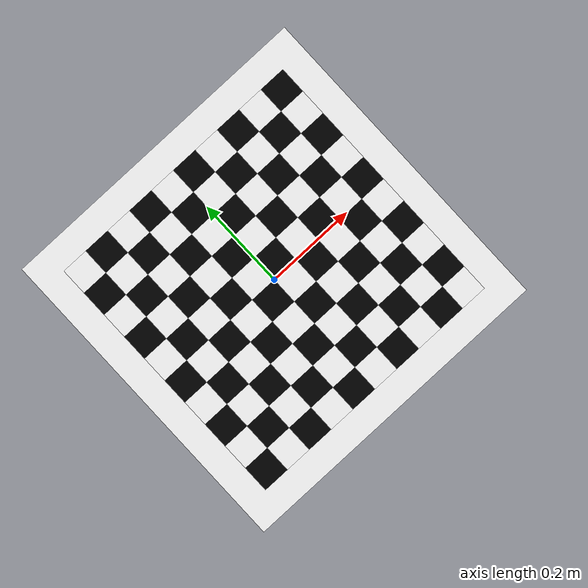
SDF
<?xml version="1.0"?>
<sdf version="1.4">
  <model name="checkerboard_10_10_0_06">
  <static>true</static>
  <link name="checkerboard_10_10_0_06_body">
      <visual name="checker_0_0">
        <pose>-0.27 -0.27 0 0 0 0</pose>
        <geometry>
          <box>
            <size>0.06 0.06 0.0002</size>
          </box>
        </geometry>
        <material>
          <ambient>0 0 0 1</ambient>
          <diffuse>0 0 0 1</diffuse>
          <specular>0 0 0 1</specular>
          <emissive>0 0 0 1</emissive>
        </material>
      </visual>
      <visual name="checker_0_1">
        <pose>-0.27 -0.21 0 0 0 0</pose>
        <geometry>
          <box>
            <size>0.06 0.06 0.0002</size>
          </box>
        </geometry>
        <material>
          <ambient>1 1 1 1</ambient>
          <diffuse>1 1 1 1</diffuse>
          <specular>1 1 1 1</specular>
          <emissive>1 1 1 1</emissive>
        </material>
      </visual>
      <visual name="checker_0_2">
        <pose>-0.27 -0.15 0 0 0 0</pose>
        <geometry>
          <box>
            <size>0.06 0.06 0.0002</size>
          </box>
        </geometry>
        <material>
          <ambient>0 0 0 1</ambient>
          <diffuse>0 0 0 1</diffuse>
          <specular>0 0 0 1</specular>
          <emissive>0 0 0 1</emissive>
        </material>
      </visual>
      <visual name="checker_0_3">
        <pose>-0.27 -0.09 0 0 0 0</pose>
        <geometry>
          <box>
            <size>0.06 0.06 0.0002</size>
          </box>
        </geometry>
        <material>
          <ambient>1 1 1 1</ambient>
          <diffuse>1 1 1 1</diffuse>
          <specular>1 1 1 1</specular>
          <emissive>1 1 1 1</emissive>
        </material>
      </visual>
      <visual name="checker_0_4">
        <pose>-0.27 -0.02999999999999997 0 0 0 0</pose>
        <geometry>
          <box>
            <size>0.06 0.06 0.0002</size>
          </box>
        </geometry>
        <material>
          <ambient>0 0 0 1</ambient>
          <diffuse>0 0 0 1</diffuse>
          <specular>0 0 0 1</specular>
          <emissive>0 0 0 1</emissive>
        </material>
      </visual>
      <visual name="checker_0_5">
        <pose>-0.27 0.02999999999999997 0 0 0 0</pose>
        <geometry>
          <box>
            <size>0.06 0.06 0.0002</size>
          </box>
        </geometry>
        <material>
          <ambient>1 1 1 1</ambient>
          <diffuse>1 1 1 1</diffuse>
          <specular>1 1 1 1</specular>
          <emissive>1 1 1 1</emissive>
        </material>
      </visual>
      <visual name="checker_0_6">
        <pose>-0.27 0.09000000000000002 0 0 0 0</pose>
        <geometry>
          <box>
            <size>0.06 0.06 0.0002</size>
          </box>
        </geometry>
        <material>
          <ambient>0 0 0 1</ambient>
          <diffuse>0 0 0 1</diffuse>
          <specular>0 0 0 1</specular>
          <emissive>0 0 0 1</emissive>
        </material>
      </visual>
      <visual name="checker_0_7">
        <pose>-0.27 0.14999999999999997 0 0 0 0</pose>
        <geometry>
          <box>
            <size>0.06 0.06 0.0002</size>
          </box>
        </geometry>
        <material>
          <ambient>1 1 1 1</ambient>
          <diffuse>1 1 1 1</diffuse>
          <specular>1 1 1 1</specular>
          <emissive>1 1 1 1</emissive>
        </material>
      </visual>
      <visual name="checker_0_8">
        <pose>-0.27 0.21000000000000002 0 0 0 0</pose>
        <geometry>
          <box>
            <size>0.06 0.06 0.0002</size>
          </box>
        </geometry>
        <material>
          <ambient>0 0 0 1</ambient>
          <diffuse>0 0 0 1</diffuse>
          <specular>0 0 0 1</specular>
          <emissive>0 0 0 1</emissive>
        </material>
      </visual>
      <visual name="checker_0_9">
        <pose>-0.27 0.2700000000000001 0 0 0 0</pose>
        <geometry>
          <box>
            <size>0.06 0.06 0.0002</size>
          </box>
        </geometry>
        <material>
          <ambient>1 1 1 1</ambient>
          <diffuse>1 1 1 1</diffuse>
          <specular>1 1 1 1</specular>
          <emissive>1 1 1 1</emissive>
        </material>
      </visual>
      <visual name="checker_1_0">
        <pose>-0.21 -0.27 0 0 0 0</pose>
        <geometry>
          <box>
            <size>0.06 0.06 0.0002</size>
          </box>
        </geometry>
        <material>
          <ambient>1 1 1 1</ambient>
          <diffuse>1 1 1 1</diffuse>
          <specular>1 1 1 1</specular>
          <emissive>1 1 1 1</emissive>
        </material>
      </visual>
      <visual name="checker_1_1">
        <pose>-0.21 -0.21 0 0 0 0</pose>
        <geometry>
          <box>
            <size>0.06 0.06 0.0002</size>
          </box>
        </geometry>
        <material>
          <ambient>0 0 0 1</ambient>
          <diffuse>0 0 0 1</diffuse>
          <specular>0 0 0 1</specular>
          <emissive>0 0 0 1</emissive>
        </material>
      </visual>
      <visual name="checker_1_2">
        <pose>-0.21 -0.15 0 0 0 0</pose>
        <geometry>
          <box>
            <size>0.06 0.06 0.0002</size>
          </box>
        </geometry>
        <material>
          <ambient>1 1 1 1</ambient>
          <diffuse>1 1 1 1</diffuse>
          <specular>1 1 1 1</specular>
          <emissive>1 1 1 1</emissive>
        </material>
      </visual>
      <visual name="checker_1_3">
        <pose>-0.21 -0.09 0 0 0 0</pose>
        <geometry>
          <box>
            <size>0.06 0.06 0.0002</size>
          </box>
        </geometry>
        <material>
          <ambient>0 0 0 1</ambient>
          <diffuse>0 0 0 1</diffuse>
          <specular>0 0 0 1</specular>
          <emissive>0 0 0 1</emissive>
        </material>
      </visual>
      <visual name="checker_1_4">
        <pose>-0.21 -0.02999999999999997 0 0 0 0</pose>
        <geometry>
          <box>
            <size>0.06 0.06 0.0002</size>
          </box>
        </geometry>
        <material>
          <ambient>1 1 1 1</ambient>
          <diffuse>1 1 1 1</diffuse>
          <specular>1 1 1 1</specular>
          <emissive>1 1 1 1</emissive>
        </material>
      </visual>
      <visual name="checker_1_5">
        <pose>-0.21 0.02999999999999997 0 0 0 0</pose>
        <geometry>
          <box>
            <size>0.06 0.06 0.0002</size>
          </box>
        </geometry>
        <material>
          <ambient>0 0 0 1</ambient>
          <diffuse>0 0 0 1</diffuse>
          <specular>0 0 0 1</specular>
          <emissive>0 0 0 1</emissive>
        </material>
      </visual>
      <visual name="checker_1_6">
        <pose>-0.21 0.09000000000000002 0 0 0 0</pose>
        <geometry>
          <box>
            <size>0.06 0.06 0.0002</size>
          </box>
        </geometry>
        <material>
          <ambient>1 1 1 1</ambient>
          <diffuse>1 1 1 1</diffuse>
          <specular>1 1 1 1</specular>
          <emissive>1 1 1 1</emissive>
        </material>
      </visual>
      <visual name="checker_1_7">
        <pose>-0.21 0.14999999999999997 0 0 0 0</pose>
        <geometry>
          <box>
            <size>0.06 0.06 0.0002</size>
          </box>
        </geometry>
        <material>
          <ambient>0 0 0 1</ambient>
          <diffuse>0 0 0 1</diffuse>
          <specular>0 0 0 1</specular>
          <emissive>0 0 0 1</emissive>
        </material>
      </visual>
      <visual name="checker_1_8">
        <pose>-0.21 0.21000000000000002 0 0 0 0</pose>
        <geometry>
          <box>
            <size>0.06 0.06 0.0002</size>
          </box>
        </geometry>
        <material>
          <ambient>1 1 1 1</ambient>
          <diffuse>1 1 1 1</diffuse>
          <specular>1 1 1 1</specular>
          <emissive>1 1 1 1</emissive>
        </material>
      </visual>
      <visual name="checker_1_9">
        <pose>-0.21 0.2700000000000001 0 0 0 0</pose>
        <geometry>
          <box>
            <size>0.06 0.06 0.0002</size>
          </box>
        </geometry>
        <material>
          <ambient>0 0 0 1</ambient>
          <diffuse>0 0 0 1</diffuse>
          <specular>0 0 0 1</specular>
          <emissive>0 0 0 1</emissive>
        </material>
      </visual>
      <visual name="checker_2_0">
        <pose>-0.15 -0.27 0 0 0 0</pose>
        <geometry>
          <box>
            <size>0.06 0.06 0.0002</size>
          </box>
        </geometry>
        <material>
          <ambient>0 0 0 1</ambient>
          <diffuse>0 0 0 1</diffuse>
          <specular>0 0 0 1</specular>
          <emissive>0 0 0 1</emissive>
        </material>
      </visual>
      <visual name="checker_2_1">
        <pose>-0.15 -0.21 0 0 0 0</pose>
        <geometry>
          <box>
            <size>0.06 0.06 0.0002</size>
          </box>
        </geometry>
        <material>
          <ambient>1 1 1 1</ambient>
          <diffuse>1 1 1 1</diffuse>
          <specular>1 1 1 1</specular>
          <emissive>1 1 1 1</emissive>
        </material>
      </visual>
      <visual name="checker_2_2">
        <pose>-0.15 -0.15 0 0 0 0</pose>
        <geometry>
          <box>
            <size>0.06 0.06 0.0002</size>
          </box>
        </geometry>
        <material>
          <ambient>0 0 0 1</ambient>
          <diffuse>0 0 0 1</diffuse>
          <specular>0 0 0 1</specular>
          <emissive>0 0 0 1</emissive>
        </material>
      </visual>
      <visual name="checker_2_3">
        <pose>-0.15 -0.09 0 0 0 0</pose>
        <geometry>
          <box>
            <size>0.06 0.06 0.0002</size>
          </box>
        </geometry>
        <material>
          <ambient>1 1 1 1</ambient>
          <diffuse>1 1 1 1</diffuse>
          <specular>1 1 1 1</specular>
          <emissive>1 1 1 1</emissive>
        </material>
      </visual>
      <visual name="checker_2_4">
        <pose>-0.15 -0.02999999999999997 0 0 0 0</pose>
        <geometry>
          <box>
            <size>0.06 0.06 0.0002</size>
          </box>
        </geometry>
        <material>
          <ambient>0 0 0 1</ambient>
          <diffuse>0 0 0 1</diffuse>
          <specular>0 0 0 1</specular>
          <emissive>0 0 0 1</emissive>
        </material>
      </visual>
      <visual name="checker_2_5">
        <pose>-0.15 0.02999999999999997 0 0 0 0</pose>
        <geometry>
          <box>
            <size>0.06 0.06 0.0002</size>
          </box>
        </geometry>
        <material>
          <ambient>1 1 1 1</ambient>
          <diffuse>1 1 1 1</diffuse>
          <specular>1 1 1 1</specular>
          <emissive>1 1 1 1</emissive>
        </material>
      </visual>
      <visual name="checker_2_6">
        <pose>-0.15 0.09000000000000002 0 0 0 0</pose>
        <geometry>
          <box>
            <size>0.06 0.06 0.0002</size>
          </box>
        </geometry>
        <material>
          <ambient>0 0 0 1</ambient>
          <diffuse>0 0 0 1</diffuse>
          <specular>0 0 0 1</specular>
          <emissive>0 0 0 1</emissive>
        </material>
      </visual>
      <visual name="checker_2_7">
        <pose>-0.15 0.14999999999999997 0 0 0 0</pose>
        <geometry>
          <box>
            <size>0.06 0.06 0.0002</size>
          </box>
        </geometry>
        <material>
          <ambient>1 1 1 1</ambient>
          <diffuse>1 1 1 1</diffuse>
          <specular>1 1 1 1</specular>
          <emissive>1 1 1 1</emissive>
        </material>
      </visual>
      <visual name="checker_2_8">
        <pose>-0.15 0.21000000000000002 0 0 0 0</pose>
        <geometry>
          <box>
            <size>0.06 0.06 0.0002</size>
          </box>
        </geometry>
        <material>
          <ambient>0 0 0 1</ambient>
          <diffuse>0 0 0 1</diffuse>
          <specular>0 0 0 1</specular>
          <emissive>0 0 0 1</emissive>
        </material>
      </visual>
      <visual name="checker_2_9">
        <pose>-0.15 0.2700000000000001 0 0 0 0</pose>
        <geometry>
          <box>
            <size>0.06 0.06 0.0002</size>
          </box>
        </geometry>
        <material>
          <ambient>1 1 1 1</ambient>
          <diffuse>1 1 1 1</diffuse>
          <specular>1 1 1 1</specular>
          <emissive>1 1 1 1</emissive>
        </material>
      </visual>
      <visual name="checker_3_0">
        <pose>-0.09 -0.27 0 0 0 0</pose>
        <geometry>
          <box>
            <size>0.06 0.06 0.0002</size>
          </box>
        </geometry>
        <material>
          <ambient>1 1 1 1</ambient>
          <diffuse>1 1 1 1</diffuse>
          <specular>1 1 1 1</specular>
          <emissive>1 1 1 1</emissive>
        </material>
      </visual>
      <visual name="checker_3_1">
        <pose>-0.09 -0.21 0 0 0 0</pose>
        <geometry>
          <box>
            <size>0.06 0.06 0.0002</size>
          </box>
        </geometry>
        <material>
          <ambient>0 0 0 1</ambient>
          <diffuse>0 0 0 1</diffuse>
          <specular>0 0 0 1</specular>
          <emissive>0 0 0 1</emissive>
        </material>
      </visual>
      <visual name="checker_3_2">
        <pose>-0.09 -0.15 0 0 0 0</pose>
        <geometry>
          <box>
            <size>0.06 0.06 0.0002</size>
          </box>
        </geometry>
        <material>
          <ambient>1 1 1 1</ambient>
          <diffuse>1 1 1 1</diffuse>
          <specular>1 1 1 1</specular>
          <emissive>1 1 1 1</emissive>
        </material>
      </visual>
      <visual name="checker_3_3">
        <pose>-0.09 -0.09 0 0 0 0</pose>
        <geometry>
          <box>
            <size>0.06 0.06 0.0002</size>
          </box>
        </geometry>
        <material>
          <ambient>0 0 0 1</ambient>
          <diffuse>0 0 0 1</diffuse>
          <specular>0 0 0 1</specular>
          <emissive>0 0 0 1</emissive>
        </material>
      </visual>
      <visual name="checker_3_4">
        <pose>-0.09 -0.02999999999999997 0 0 0 0</pose>
        <geometry>
          <box>
            <size>0.06 0.06 0.0002</size>
          </box>
        </geometry>
        <material>
          <ambient>1 1 1 1</ambient>
          <diffuse>1 1 1 1</diffuse>
          <specular>1 1 1 1</specular>
          <emissive>1 1 1 1</emissive>
        </material>
      </visual>
      <visual name="checker_3_5">
        <pose>-0.09 0.02999999999999997 0 0 0 0</pose>
        <geometry>
          <box>
            <size>0.06 0.06 0.0002</size>
          </box>
        </geometry>
        <material>
          <ambient>0 0 0 1</ambient>
          <diffuse>0 0 0 1</diffuse>
          <specular>0 0 0 1</specular>
          <emissive>0 0 0 1</emissive>
        </material>
      </visual>
      <visual name="checker_3_6">
        <pose>-0.09 0.09000000000000002 0 0 0 0</pose>
        <geometry>
          <box>
            <size>0.06 0.06 0.0002</size>
          </box>
        </geometry>
        <material>
          <ambient>1 1 1 1</ambient>
          <diffuse>1 1 1 1</diffuse>
          <specular>1 1 1 1</specular>
          <emissive>1 1 1 1</emissive>
        </material>
      </visual>
      <visual name="checker_3_7">
        <pose>-0.09 0.14999999999999997 0 0 0 0</pose>
        <geometry>
          <box>
            <size>0.06 0.06 0.0002</size>
          </box>
        </geometry>
        <material>
          <ambient>0 0 0 1</ambient>
          <diffuse>0 0 0 1</diffuse>
          <specular>0 0 0 1</specular>
          <emissive>0 0 0 1</emissive>
        </material>
      </visual>
      <visual name="checker_3_8">
        <pose>-0.09 0.21000000000000002 0 0 0 0</pose>
        <geometry>
          <box>
            <size>0.06 0.06 0.0002</size>
          </box>
        </geometry>
        <material>
          <ambient>1 1 1 1</ambient>
          <diffuse>1 1 1 1</diffuse>
          <specular>1 1 1 1</specular>
          <emissive>1 1 1 1</emissive>
        </material>
      </visual>
      <visual name="checker_3_9">
        <pose>-0.09 0.2700000000000001 0 0 0 0</pose>
        <geometry>
          <box>
            <size>0.06 0.06 0.0002</size>
          </box>
        </geometry>
        <material>
          <ambient>0 0 0 1</ambient>
          <diffuse>0 0 0 1</diffuse>
          <specular>0 0 0 1</specular>
          <emissive>0 0 0 1</emissive>
        </material>
      </visual>
      <visual name="checker_4_0">
        <pose>-0.02999999999999997 -0.27 0 0 0 0</pose>
        <geometry>
          <box>
            <size>0.06 0.06 0.0002</size>
          </box>
        </geometry>
        <material>
          <ambient>0 0 0 1</ambient>
          <diffuse>0 0 0 1</diffuse>
          <specular>0 0 0 1</specular>
          <emissive>0 0 0 1</emissive>
        </material>
      </visual>
      <visual name="checker_4_1">
        <pose>-0.02999999999999997 -0.21 0 0 0 0</pose>
        <geometry>
          <box>
            <size>0.06 0.06 0.0002</size>
          </box>
        </geometry>
        <material>
          <ambient>1 1 1 1</ambient>
          <diffuse>1 1 1 1</diffuse>
          <specular>1 1 1 1</specular>
          <emissive>1 1 1 1</emissive>
        </material>
      </visual>
      <visual name="checker_4_2">
        <pose>-0.02999999999999997 -0.15 0 0 0 0</pose>
        <geometry>
          <box>
            <size>0.06 0.06 0.0002</size>
          </box>
        </geometry>
        <material>
          <ambient>0 0 0 1</ambient>
          <diffuse>0 0 0 1</diffuse>
          <specular>0 0 0 1</specular>
          <emissive>0 0 0 1</emissive>
        </material>
      </visual>
      <visual name="checker_4_3">
        <pose>-0.02999999999999997 -0.09 0 0 0 0</pose>
        <geometry>
          <box>
            <size>0.06 0.06 0.0002</size>
          </box>
        </geometry>
        <material>
          <ambient>1 1 1 1</ambient>
          <diffuse>1 1 1 1</diffuse>
          <specular>1 1 1 1</specular>
          <emissive>1 1 1 1</emissive>
        </material>
      </visual>
      <visual name="checker_4_4">
        <pose>-0.02999999999999997 -0.02999999999999997 0 0 0 0</pose>
        <geometry>
          <box>
            <size>0.06 0.06 0.0002</size>
          </box>
        </geometry>
        <material>
          <ambient>0 0 0 1</ambient>
          <diffuse>0 0 0 1</diffuse>
          <specular>0 0 0 1</specular>
          <emissive>0 0 0 1</emissive>
        </material>
      </visual>
      <visual name="checker_4_5">
        <pose>-0.02999999999999997 0.02999999999999997 0 0 0 0</pose>
        <geometry>
          <box>
            <size>0.06 0.06 0.0002</size>
          </box>
        </geometry>
        <material>
          <ambient>1 1 1 1</ambient>
          <diffuse>1 1 1 1</diffuse>
          <specular>1 1 1 1</specular>
          <emissive>1 1 1 1</emissive>
        </material>
      </visual>
      <visual name="checker_4_6">
        <pose>-0.02999999999999997 0.09000000000000002 0 0 0 0</pose>
        <geometry>
          <box>
            <size>0.06 0.06 0.0002</size>
          </box>
        </geometry>
        <material>
          <ambient>0 0 0 1</ambient>
          <diffuse>0 0 0 1</diffuse>
          <specular>0 0 0 1</specular>
          <emissive>0 0 0 1</emissive>
        </material>
      </visual>
      <visual name="checker_4_7">
        <pose>-0.02999999999999997 0.14999999999999997 0 0 0 0</pose>
        <geometry>
          <box>
            <size>0.06 0.06 0.0002</size>
          </box>
        </geometry>
        <material>
          <ambient>1 1 1 1</ambient>
          <diffuse>1 1 1 1</diffuse>
          <specular>1 1 1 1</specular>
          <emissive>1 1 1 1</emissive>
        </material>
      </visual>
      <visual name="checker_4_8">
        <pose>-0.02999999999999997 0.21000000000000002 0 0 0 0</pose>
        <geometry>
          <box>
            <size>0.06 0.06 0.0002</size>
          </box>
        </geometry>
        <material>
          <ambient>0 0 0 1</ambient>
          <diffuse>0 0 0 1</diffuse>
          <specular>0 0 0 1</specular>
          <emissive>0 0 0 1</emissive>
        </material>
      </visual>
      <visual name="checker_4_9">
        <pose>-0.02999999999999997 0.2700000000000001 0 0 0 0</pose>
        <geometry>
          <box>
            <size>0.06 0.06 0.0002</size>
          </box>
        </geometry>
        <material>
          <ambient>1 1 1 1</ambient>
          <diffuse>1 1 1 1</diffuse>
          <specular>1 1 1 1</specular>
          <emissive>1 1 1 1</emissive>
        </material>
      </visual>
      <visual name="checker_5_0">
        <pose>0.02999999999999997 -0.27 0 0 0 0</pose>
        <geometry>
          <box>
            <size>0.06 0.06 0.0002</size>
          </box>
        </geometry>
        <material>
          <ambient>1 1 1 1</ambient>
          <diffuse>1 1 1 1</diffuse>
          <specular>1 1 1 1</specular>
          <emissive>1 1 1 1</emissive>
        </material>
      </visual>
      <visual name="checker_5_1">
        <pose>0.02999999999999997 -0.21 0 0 0 0</pose>
        <geometry>
          <box>
            <size>0.06 0.06 0.0002</size>
          </box>
        </geometry>
        <material>
          <ambient>0 0 0 1</ambient>
          <diffuse>0 0 0 1</diffuse>
          <specular>0 0 0 1</specular>
          <emissive>0 0 0 1</emissive>
        </material>
      </visual>
      <visual name="checker_5_2">
        <pose>0.02999999999999997 -0.15 0 0 0 0</pose>
        <geometry>
          <box>
            <size>0.06 0.06 0.0002</size>
          </box>
        </geometry>
        <material>
          <ambient>1 1 1 1</ambient>
          <diffuse>1 1 1 1</diffuse>
          <specular>1 1 1 1</specular>
          <emissive>1 1 1 1</emissive>
        </material>
      </visual>
      <visual name="checker_5_3">
        <pose>0.02999999999999997 -0.09 0 0 0 0</pose>
        <geometry>
          <box>
            <size>0.06 0.06 0.0002</size>
          </box>
        </geometry>
        <material>
          <ambient>0 0 0 1</ambient>
          <diffuse>0 0 0 1</diffuse>
          <specular>0 0 0 1</specular>
          <emissive>0 0 0 1</emissive>
        </material>
      </visual>
      <visual name="checker_5_4">
        <pose>0.02999999999999997 -0.02999999999999997 0 0 0 0</pose>
        <geometry>
          <box>
            <size>0.06 0.06 0.0002</size>
          </box>
        </geometry>
        <material>
          <ambient>1 1 1 1</ambient>
          <diffuse>1 1 1 1</diffuse>
          <specular>1 1 1 1</specular>
          <emissive>1 1 1 1</emissive>
        </material>
      </visual>
      <visual name="checker_5_5">
        <pose>0.02999999999999997 0.02999999999999997 0 0 0 0</pose>
        <geometry>
          <box>
            <size>0.06 0.06 0.0002</size>
          </box>
        </geometry>
        <material>
          <ambient>0 0 0 1</ambient>
          <diffuse>0 0 0 1</diffuse>
          <specular>0 0 0 1</specular>
          <emissive>0 0 0 1</emissive>
        </material>
      </visual>
      <visual name="checker_5_6">
        <pose>0.02999999999999997 0.09000000000000002 0 0 0 0</pose>
        <geometry>
          <box>
            <size>0.06 0.06 0.0002</size>
          </box>
        </geometry>
        <material>
          <ambient>1 1 1 1</ambient>
          <diffuse>1 1 1 1</diffuse>
          <specular>1 1 1 1</specular>
          <emissive>1 1 1 1</emissive>
        </material>
      </visual>
      <visual name="checker_5_7">
        <pose>0.02999999999999997 0.14999999999999997 0 0 0 0</pose>
        <geometry>
          <box>
            <size>0.06 0.06 0.0002</size>
          </box>
        </geometry>
        <material>
          <ambient>0 0 0 1</ambient>
          <diffuse>0 0 0 1</diffuse>
          <specular>0 0 0 1</specular>
          <emissive>0 0 0 1</emissive>
        </material>
      </visual>
      <visual name="checker_5_8">
        <pose>0.02999999999999997 0.21000000000000002 0 0 0 0</pose>
        <geometry>
          <box>
            <size>0.06 0.06 0.0002</size>
          </box>
        </geometry>
        <material>
          <ambient>1 1 1 1</ambient>
          <diffuse>1 1 1 1</diffuse>
          <specular>1 1 1 1</specular>
          <emissive>1 1 1 1</emissive>
        </material>
      </visual>
      <visual name="checker_5_9">
        <pose>0.02999999999999997 0.2700000000000001 0 0 0 0</pose>
        <geometry>
          <box>
            <size>0.06 0.06 0.0002</size>
          </box>
        </geometry>
        <material>
          <ambient>0 0 0 1</ambient>
          <diffuse>0 0 0 1</diffuse>
          <specular>0 0 0 1</specular>
          <emissive>0 0 0 1</emissive>
        </material>
      </visual>
      <visual name="checker_6_0">
        <pose>0.09000000000000002 -0.27 0 0 0 0</pose>
        <geometry>
          <box>
            <size>0.06 0.06 0.0002</size>
          </box>
        </geometry>
        <material>
          <ambient>0 0 0 1</ambient>
          <diffuse>0 0 0 1</diffuse>
          <specular>0 0 0 1</specular>
          <emissive>0 0 0 1</emissive>
        </material>
      </visual>
      <visual name="checker_6_1">
        <pose>0.09000000000000002 -0.21 0 0 0 0</pose>
        <geometry>
          <box>
            <size>0.06 0.06 0.0002</size>
          </box>
        </geometry>
        <material>
          <ambient>1 1 1 1</ambient>
          <diffuse>1 1 1 1</diffuse>
          <specular>1 1 1 1</specular>
          <emissive>1 1 1 1</emissive>
        </material>
      </visual>
      <visual name="checker_6_2">
        <pose>0.09000000000000002 -0.15 0 0 0 0</pose>
        <geometry>
          <box>
            <size>0.06 0.06 0.0002</size>
          </box>
        </geometry>
        <material>
          <ambient>0 0 0 1</ambient>
          <diffuse>0 0 0 1</diffuse>
          <specular>0 0 0 1</specular>
          <emissive>0 0 0 1</emissive>
        </material>
      </visual>
      <visual name="checker_6_3">
        <pose>0.09000000000000002 -0.09 0 0 0 0</pose>
        <geometry>
          <box>
            <size>0.06 0.06 0.0002</size>
          </box>
        </geometry>
        <material>
          <ambient>1 1 1 1</ambient>
          <diffuse>1 1 1 1</diffuse>
          <specular>1 1 1 1</specular>
          <emissive>1 1 1 1</emissive>
        </material>
      </visual>
      <visual name="checker_6_4">
        <pose>0.09000000000000002 -0.02999999999999997 0 0 0 0</pose>
        <geometry>
          <box>
            <size>0.06 0.06 0.0002</size>
          </box>
        </geometry>
        <material>
          <ambient>0 0 0 1</ambient>
          <diffuse>0 0 0 1</diffuse>
          <specular>0 0 0 1</specular>
          <emissive>0 0 0 1</emissive>
        </material>
      </visual>
      <visual name="checker_6_5">
        <pose>0.09000000000000002 0.02999999999999997 0 0 0 0</pose>
        <geometry>
          <box>
            <size>0.06 0.06 0.0002</size>
          </box>
        </geometry>
        <material>
          <ambient>1 1 1 1</ambient>
          <diffuse>1 1 1 1</diffuse>
          <specular>1 1 1 1</specular>
          <emissive>1 1 1 1</emissive>
        </material>
      </visual>
      <visual name="checker_6_6">
        <pose>0.09000000000000002 0.09000000000000002 0 0 0 0</pose>
        <geometry>
          <box>
            <size>0.06 0.06 0.0002</size>
          </box>
        </geometry>
        <material>
          <ambient>0 0 0 1</ambient>
          <diffuse>0 0 0 1</diffuse>
          <specular>0 0 0 1</specular>
          <emissive>0 0 0 1</emissive>
        </material>
      </visual>
      <visual name="checker_6_7">
        <pose>0.09000000000000002 0.14999999999999997 0 0 0 0</pose>
        <geometry>
          <box>
            <size>0.06 0.06 0.0002</size>
          </box>
        </geometry>
        <material>
          <ambient>1 1 1 1</ambient>
          <diffuse>1 1 1 1</diffuse>
          <specular>1 1 1 1</specular>
          <emissive>1 1 1 1</emissive>
        </material>
      </visual>
      <visual name="checker_6_8">
        <pose>0.09000000000000002 0.21000000000000002 0 0 0 0</pose>
        <geometry>
          <box>
            <size>0.06 0.06 0.0002</size>
          </box>
        </geometry>
        <material>
          <ambient>0 0 0 1</ambient>
          <diffuse>0 0 0 1</diffuse>
          <specular>0 0 0 1</specular>
          <emissive>0 0 0 1</emissive>
        </material>
      </visual>
      <visual name="checker_6_9">
        <pose>0.09000000000000002 0.2700000000000001 0 0 0 0</pose>
        <geometry>
          <box>
            <size>0.06 0.06 0.0002</size>
          </box>
        </geometry>
        <material>
          <ambient>1 1 1 1</ambient>
          <diffuse>1 1 1 1</diffuse>
          <specular>1 1 1 1</specular>
          <emissive>1 1 1 1</emissive>
        </material>
      </visual>
      <visual name="checker_7_0">
        <pose>0.14999999999999997 -0.27 0 0 0 0</pose>
        <geometry>
          <box>
            <size>0.06 0.06 0.0002</size>
          </box>
        </geometry>
        <material>
          <ambient>1 1 1 1</ambient>
          <diffuse>1 1 1 1</diffuse>
          <specular>1 1 1 1</specular>
          <emissive>1 1 1 1</emissive>
        </material>
      </visual>
      <visual name="checker_7_1">
        <pose>0.14999999999999997 -0.21 0 0 0 0</pose>
        <geometry>
          <box>
            <size>0.06 0.06 0.0002</size>
          </box>
        </geometry>
        <material>
          <ambient>0 0 0 1</ambient>
          <diffuse>0 0 0 1</diffuse>
          <specular>0 0 0 1</specular>
          <emissive>0 0 0 1</emissive>
        </material>
      </visual>
      <visual name="checker_7_2">
        <pose>0.14999999999999997 -0.15 0 0 0 0</pose>
        <geometry>
          <box>
            <size>0.06 0.06 0.0002</size>
          </box>
        </geometry>
        <material>
          <ambient>1 1 1 1</ambient>
          <diffuse>1 1 1 1</diffuse>
          <specular>1 1 1 1</specular>
          <emissive>1 1 1 1</emissive>
        </material>
      </visual>
      <visual name="checker_7_3">
        <pose>0.14999999999999997 -0.09 0 0 0 0</pose>
        <geometry>
          <box>
            <size>0.06 0.06 0.0002</size>
          </box>
        </geometry>
        <material>
          <ambient>0 0 0 1</ambient>
          <diffuse>0 0 0 1</diffuse>
          <specular>0 0 0 1</specular>
          <emissive>0 0 0 1</emissive>
        </material>
      </visual>
      <visual name="checker_7_4">
        <pose>0.14999999999999997 -0.02999999999999997 0 0 0 0</pose>
        <geometry>
          <box>
            <size>0.06 0.06 0.0002</size>
          </box>
        </geometry>
        <material>
          <ambient>1 1 1 1</ambient>
          <diffuse>1 1 1 1</diffuse>
          <specular>1 1 1 1</specular>
          <emissive>1 1 1 1</emissive>
        </material>
      </visual>
      <visual name="checker_7_5">
        <pose>0.14999999999999997 0.02999999999999997 0 0 0 0</pose>
        <geometry>
          <box>
            <size>0.06 0.06 0.0002</size>
          </box>
        </geometry>
        <material>
          <ambient>0 0 0 1</ambient>
          <diffuse>0 0 0 1</diffuse>
          <specular>0 0 0 1</specular>
          <emissive>0 0 0 1</emissive>
        </material>
      </visual>
      <visual name="checker_7_6">
        <pose>0.14999999999999997 0.09000000000000002 0 0 0 0</pose>
        <geometry>
          <box>
            <size>0.06 0.06 0.0002</size>
          </box>
        </geometry>
        <material>
          <ambient>1 1 1 1</ambient>
          <diffuse>1 1 1 1</diffuse>
          <specular>1 1 1 1</specular>
          <emissive>1 1 1 1</emissive>
        </material>
      </visual>
      <visual name="checker_7_7">
        <pose>0.14999999999999997 0.14999999999999997 0 0 0 0</pose>
        <geometry>
          <box>
            <size>0.06 0.06 0.0002</size>
          </box>
        </geometry>
        <material>
          <ambient>0 0 0 1</ambient>
          <diffuse>0 0 0 1</diffuse>
          <specular>0 0 0 1</specular>
          <emissive>0 0 0 1</emissive>
        </material>
      </visual>
      <visual name="checker_7_8">
        <pose>0.14999999999999997 0.21000000000000002 0 0 0 0</pose>
        <geometry>
          <box>
            <size>0.06 0.06 0.0002</size>
          </box>
        </geometry>
        <material>
          <ambient>1 1 1 1</ambient>
          <diffuse>1 1 1 1</diffuse>
          <specular>1 1 1 1</specular>
          <emissive>1 1 1 1</emissive>
        </material>
      </visual>
      <visual name="checker_7_9">
        <pose>0.14999999999999997 0.2700000000000001 0 0 0 0</pose>
        <geometry>
          <box>
            <size>0.06 0.06 0.0002</size>
          </box>
        </geometry>
        <material>
          <ambient>0 0 0 1</ambient>
          <diffuse>0 0 0 1</diffuse>
          <specular>0 0 0 1</specular>
          <emissive>0 0 0 1</emissive>
        </material>
      </visual>
      <visual name="checker_8_0">
        <pose>0.21000000000000002 -0.27 0 0 0 0</pose>
        <geometry>
          <box>
            <size>0.06 0.06 0.0002</size>
          </box>
        </geometry>
        <material>
          <ambient>0 0 0 1</ambient>
          <diffuse>0 0 0 1</diffuse>
          <specular>0 0 0 1</specular>
          <emissive>0 0 0 1</emissive>
        </material>
      </visual>
      <visual name="checker_8_1">
        <pose>0.21000000000000002 -0.21 0 0 0 0</pose>
        <geometry>
          <box>
            <size>0.06 0.06 0.0002</size>
          </box>
        </geometry>
        <material>
          <ambient>1 1 1 1</ambient>
          <diffuse>1 1 1 1</diffuse>
          <specular>1 1 1 1</specular>
          <emissive>1 1 1 1</emissive>
        </material>
      </visual>
      <visual name="checker_8_2">
        <pose>0.21000000000000002 -0.15 0 0 0 0</pose>
        <geometry>
          <box>
            <size>0.06 0.06 0.0002</size>
          </box>
        </geometry>
        <material>
          <ambient>0 0 0 1</ambient>
          <diffuse>0 0 0 1</diffuse>
          <specular>0 0 0 1</specular>
          <emissive>0 0 0 1</emissive>
        </material>
      </visual>
      <visual name="checker_8_3">
        <pose>0.21000000000000002 -0.09 0 0 0 0</pose>
        <geometry>
          <box>
            <size>0.06 0.06 0.0002</size>
          </box>
        </geometry>
        <material>
          <ambient>1 1 1 1</ambient>
          <diffuse>1 1 1 1</diffuse>
          <specular>1 1 1 1</specular>
          <emissive>1 1 1 1</emissive>
        </material>
      </visual>
      <visual name="checker_8_4">
        <pose>0.21000000000000002 -0.02999999999999997 0 0 0 0</pose>
        <geometry>
          <box>
            <size>0.06 0.06 0.0002</size>
          </box>
        </geometry>
        <material>
          <ambient>0 0 0 1</ambient>
          <diffuse>0 0 0 1</diffuse>
          <specular>0 0 0 1</specular>
          <emissive>0 0 0 1</emissive>
        </material>
      </visual>
      <visual name="checker_8_5">
        <pose>0.21000000000000002 0.02999999999999997 0 0 0 0</pose>
        <geometry>
          <box>
            <size>0.06 0.06 0.0002</size>
          </box>
        </geometry>
        <material>
          <ambient>1 1 1 1</ambient>
          <diffuse>1 1 1 1</diffuse>
          <specular>1 1 1 1</specular>
          <emissive>1 1 1 1</emissive>
        </material>
      </visual>
      <visual name="checker_8_6">
        <pose>0.21000000000000002 0.09000000000000002 0 0 0 0</pose>
        <geometry>
          <box>
            <size>0.06 0.06 0.0002</size>
          </box>
        </geometry>
        <material>
          <ambient>0 0 0 1</ambient>
          <diffuse>0 0 0 1</diffuse>
          <specular>0 0 0 1</specular>
          <emissive>0 0 0 1</emissive>
        </material>
      </visual>
      <visual name="checker_8_7">
        <pose>0.21000000000000002 0.14999999999999997 0 0 0 0</pose>
        <geometry>
          <box>
            <size>0.06 0.06 0.0002</size>
          </box>
        </geometry>
        <material>
          <ambient>1 1 1 1</ambient>
          <diffuse>1 1 1 1</diffuse>
          <specular>1 1 1 1</specular>
          <emissive>1 1 1 1</emissive>
        </material>
      </visual>
      <visual name="checker_8_8">
        <pose>0.21000000000000002 0.21000000000000002 0 0 0 0</pose>
        <geometry>
          <box>
            <size>0.06 0.06 0.0002</size>
          </box>
        </geometry>
        <material>
          <ambient>0 0 0 1</ambient>
          <diffuse>0 0 0 1</diffuse>
          <specular>0 0 0 1</specular>
          <emissive>0 0 0 1</emissive>
        </material>
      </visual>
      <visual name="checker_8_9">
        <pose>0.21000000000000002 0.2700000000000001 0 0 0 0</pose>
        <geometry>
          <box>
            <size>0.06 0.06 0.0002</size>
          </box>
        </geometry>
        <material>
          <ambient>1 1 1 1</ambient>
          <diffuse>1 1 1 1</diffuse>
          <specular>1 1 1 1</specular>
          <emissive>1 1 1 1</emissive>
        </material>
      </visual>
      <visual name="checker_9_0">
        <pose>0.2700000000000001 -0.27 0 0 0 0</pose>
        <geometry>
          <box>
            <size>0.06 0.06 0.0002</size>
          </box>
        </geometry>
        <material>
          <ambient>1 1 1 1</ambient>
          <diffuse>1 1 1 1</diffuse>
          <specular>1 1 1 1</specular>
          <emissive>1 1 1 1</emissive>
        </material>
      </visual>
      <visual name="checker_9_1">
        <pose>0.2700000000000001 -0.21 0 0 0 0</pose>
        <geometry>
          <box>
            <size>0.06 0.06 0.0002</size>
          </box>
        </geometry>
        <material>
          <ambient>0 0 0 1</ambient>
          <diffuse>0 0 0 1</diffuse>
          <specular>0 0 0 1</specular>
          <emissive>0 0 0 1</emissive>
        </material>
      </visual>
      <visual name="checker_9_2">
        <pose>0.2700000000000001 -0.15 0 0 0 0</pose>
        <geometry>
          <box>
            <size>0.06 0.06 0.0002</size>
          </box>
        </geometry>
        <material>
          <ambient>1 1 1 1</ambient>
          <diffuse>1 1 1 1</diffuse>
          <specular>1 1 1 1</specular>
          <emissive>1 1 1 1</emissive>
        </material>
      </visual>
      <visual name="checker_9_3">
        <pose>0.2700000000000001 -0.09 0 0 0 0</pose>
        <geometry>
          <box>
            <size>0.06 0.06 0.0002</size>
          </box>
        </geometry>
        <material>
          <ambient>0 0 0 1</ambient>
          <diffuse>0 0 0 1</diffuse>
          <specular>0 0 0 1</specular>
          <emissive>0 0 0 1</emissive>
        </material>
      </visual>
      <visual name="checker_9_4">
        <pose>0.2700000000000001 -0.02999999999999997 0 0 0 0</pose>
        <geometry>
          <box>
            <size>0.06 0.06 0.0002</size>
          </box>
        </geometry>
        <material>
          <ambient>1 1 1 1</ambient>
          <diffuse>1 1 1 1</diffuse>
          <specular>1 1 1 1</specular>
          <emissive>1 1 1 1</emissive>
        </material>
      </visual>
      <visual name="checker_9_5">
        <pose>0.2700000000000001 0.02999999999999997 0 0 0 0</pose>
        <geometry>
          <box>
            <size>0.06 0.06 0.0002</size>
          </box>
        </geometry>
        <material>
          <ambient>0 0 0 1</ambient>
          <diffuse>0 0 0 1</diffuse>
          <specular>0 0 0 1</specular>
          <emissive>0 0 0 1</emissive>
        </material>
      </visual>
      <visual name="checker_9_6">
        <pose>0.2700000000000001 0.09000000000000002 0 0 0 0</pose>
        <geometry>
          <box>
            <size>0.06 0.06 0.0002</size>
          </box>
        </geometry>
        <material>
          <ambient>1 1 1 1</ambient>
          <diffuse>1 1 1 1</diffuse>
          <specular>1 1 1 1</specular>
          <emissive>1 1 1 1</emissive>
        </material>
      </visual>
      <visual name="checker_9_7">
        <pose>0.2700000000000001 0.14999999999999997 0 0 0 0</pose>
        <geometry>
          <box>
            <size>0.06 0.06 0.0002</size>
          </box>
        </geometry>
        <material>
          <ambient>0 0 0 1</ambient>
          <diffuse>0 0 0 1</diffuse>
          <specular>0 0 0 1</specular>
          <emissive>0 0 0 1</emissive>
        </material>
      </visual>
      <visual name="checker_9_8">
        <pose>0.2700000000000001 0.21000000000000002 0 0 0 0</pose>
        <geometry>
          <box>
            <size>0.06 0.06 0.0002</size>
          </box>
        </geometry>
        <material>
          <ambient>1 1 1 1</ambient>
          <diffuse>1 1 1 1</diffuse>
          <specular>1 1 1 1</specular>
          <emissive>1 1 1 1</emissive>
        </material>
      </visual>
      <visual name="checker_9_9">
        <pose>0.2700000000000001 0.2700000000000001 0 0 0 0</pose>
        <geometry>
          <box>
            <size>0.06 0.06 0.0002</size>
          </box>
        </geometry>
        <material>
          <ambient>0 0 0 1</ambient>
          <diffuse>0 0 0 1</diffuse>
          <specular>0 0 0 1</specular>
          <emissive>0 0 0 1</emissive>
        </material>
      </visual>
      <visual name="checker_backdrop">
        <pose>0 0 0 0 0 0</pose>
        <geometry>
          <box>
            <size>0.72 0.72 0.0001</size>
          </box>
        </geometry>
        <material>
          <ambient>1 1 1 1</ambient>
          <diffuse>1 1 1 1</diffuse>
          <specular>1 1 1 1</specular>
          <emissive>1 1 1 1</emissive>
        </material>
      </visual>
    </link>
  </model>
</sdf>
